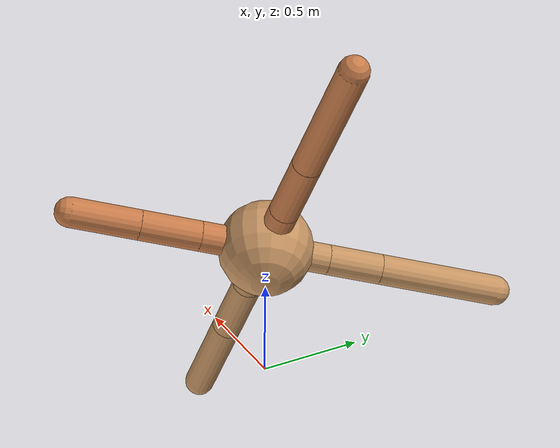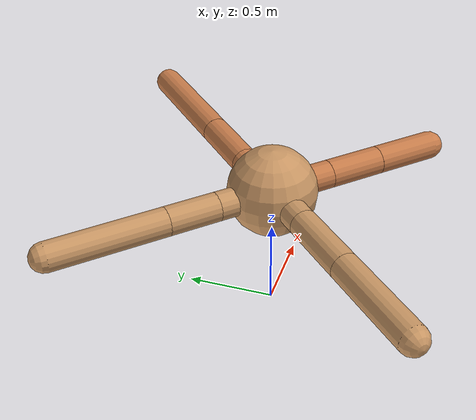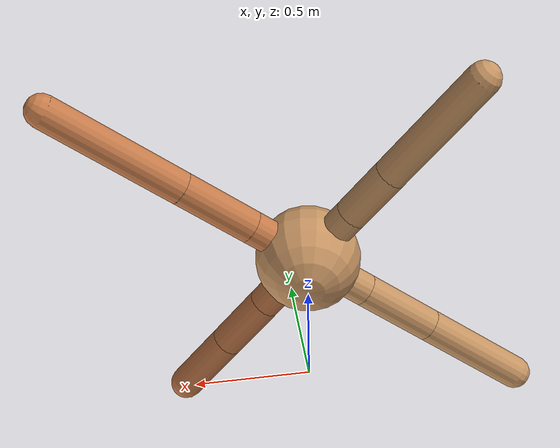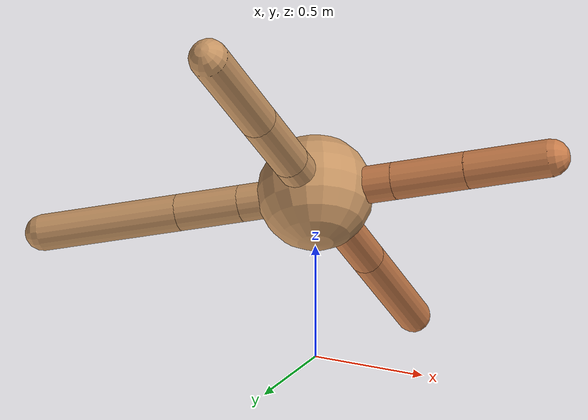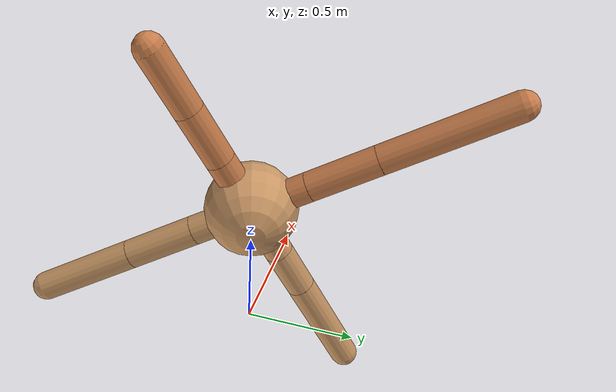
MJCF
<mujoco model="ant">
  <compiler angle="degree" coordinate="local" inertiafromgeom="true" />
  <option integrator="RK4" timestep="0.01" />
  <custom>
    <numeric data="0.0 0.0 0.55 1.0 0.0 0.0 0.0 0.0 1.0 0.0 -1.0 0.0 -1.0 0.0 1.0" name="init_qpos" />
  </custom>
  <default>
    <joint armature="1" damping="1" limited="true" />
    <geom conaffinity="0" condim="3" density="5.0" friction="1.5 0.1 0.1" margin="0.01" rgba="0.8 0.6 0.4 1" />
  </default>
  <worldbody>
    <body name="torso" pos="0 0 0.75">
      <geom name="torso_geom" pos="0 0 0" size="0.25" type="sphere" />

      <body name="front_left_leg" pos="0 0 0">
        <geom fromto="0.0 0.0 0.0 0.23265670259420493 0.23265670259420493 0.0" name="aux_1_geom" size="0.08" type="capsule" rgba=".8 .5 .3 1" />
        <body name="aux_1" pos="0.23265670259420493 0.23265670259420493 0.0">
          <joint axis="0 0 1" name="hip_1" pos="0.0 0.0 0.0" range="-40 40" type="hinge" />
          <geom fromto="0.0 0.0 0.0 0.2731054664709109 0.2731054664709109 0.0" name="left_leg_geom" size="0.08" type="capsule" rgba=".8 .5 .3 1" />
          <body pos="0.2731054664709109 0.2731054664709109 0.0" name="front_left_foot">
            <joint axis="-1 1 0" name="ankle_1" pos="0.0 0.0 0.0" range="30 100" type="hinge" />
            <geom fromto="0.0 0.0 0.0 0.5109395231895233 0.5109395231895233 0.0" name="left_ankle_geom" size="0.08" type="capsule" rgba=".8 .5 .3 1" />
          </body>
        </body>
      </body>
      <body name="front_right_leg" pos="0 0 0">
        <geom fromto="0.0 0.0 0.0 -0.23488454783115253 0.23488454783115253 0.0" name="aux_2_geom" size="0.08" type="capsule" />
        <body name="aux_2" pos="-0.23488454783115253 0.23488454783115253 0.0">
          <joint axis="0 0 1" name="hip_2" pos="0.0 0.0 0.0" range="-40 40" type="hinge" />
          <geom fromto="0.0 0.0 0.0 -0.2026735756516534 0.2026735756516534 0.0" name="right_leg_geom" size="0.08" type="capsule" />
          <body pos="-0.2026735756516534 0.2026735756516534 0.0" name="front_right_foot">
            <joint axis="1 1 0" name="ankle_2" pos="0.0 0.0 0.0" range="-100 -30" type="hinge" />
            <geom fromto="0.0 0.0 0.0 -0.45491340866061325 0.45491340866061325 0.0" name="right_ankle_geom" size="0.08" type="capsule" />
          </body>
        </body>
      </body>
      <body name="left_back_leg" pos="0 0 0">
        <geom fromto="0.0 0.0 0.0 -0.23840430583439376 -0.23840430583439376 0.0" name="aux_3_geom" size="0.08" type="capsule" />
        <body name="aux_3" pos="-0.23840430583439376 -0.23840430583439376 0.0">
          <joint axis="0 0 1" name="hip_3" pos="0.0 0.0 0.0" range="-40 40" type="hinge" />
          <geom fromto="0.0 0.0 0.0 -0.2788861046692069 -0.2788861046692069 0.0" name="back_leg_geom" size="0.08" type="capsule" />
          <body pos="-0.2788861046692069 -0.2788861046692069 0.0" name="left_back_foot">
            <joint axis="-1 1 0" name="ankle_3" pos="0.0 0.0 0.0" range="-100 -30" type="hinge" />
            <geom fromto="0.0 0.0 0.0 -0.39560238922771573 -0.39560238922771573 0.0" name="third_ankle_geom" size="0.08" type="capsule" />
          </body>
        </body>
      </body>
      <body name="right_back_leg" pos="0 0 0">
        <geom fromto="0.0 0.0 0.0 0.249350724981118 -0.249350724981118 0.0" name="aux_4_geom" size="0.08" type="capsule" rgba=".8 .5 .3 1" />
        <body name="aux_4" pos="0.249350724981118 -0.249350724981118 0.0">
          <joint axis="0 0 1" name="hip_4" pos="0.0 0.0 0.0" range="-40 40" type="hinge" />
          <geom fromto="0.0 0.0 0.0 0.22633203553932654 -0.22633203553932654 0.0" name="rightback_leg_geom" size="0.08" type="capsule" rgba=".8 .5 .3 1" />
          <body pos="0.22633203553932654 -0.22633203553932654 0.0" name="right_back_foot">
            <joint axis="1 1 0" name="ankle_4" pos="0.0 0.0 0.0" range="30 100" type="hinge" />
            <geom fromto="0.0 0.0 0.0 0.25600104327860124 -0.25600104327860124 0.0" name="fourth_ankle_geom" size="0.08" type="capsule" rgba=".8 .5 .3 1" />
          </body>
        </body>
      </body>
    </body>
  </worldbody>
  <actuator>
    <motor ctrllimited="true" ctrlrange="-1.0 1.0" joint="hip_4" gear="150" />
    <motor ctrllimited="true" ctrlrange="-1.0 1.0" joint="ankle_4" gear="150" />
    <motor ctrllimited="true" ctrlrange="-1.0 1.0" joint="hip_1" gear="150" />
    <motor ctrllimited="true" ctrlrange="-1.0 1.0" joint="ankle_1" gear="150" />
    <motor ctrllimited="true" ctrlrange="-1.0 1.0" joint="hip_2" gear="150" />
    <motor ctrllimited="true" ctrlrange="-1.0 1.0" joint="ankle_2" gear="150" />
    <motor ctrllimited="true" ctrlrange="-1.0 1.0" joint="hip_3" gear="150" />
    <motor ctrllimited="true" ctrlrange="-1.0 1.0" joint="ankle_3" gear="150" />
  </actuator>
</mujoco>
